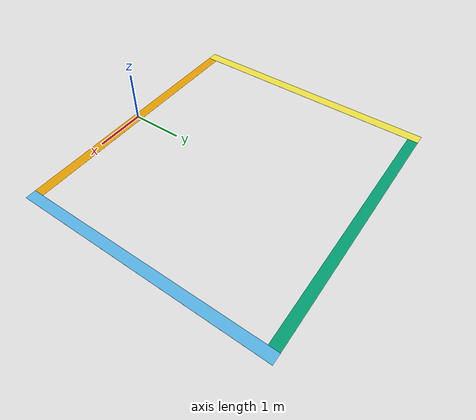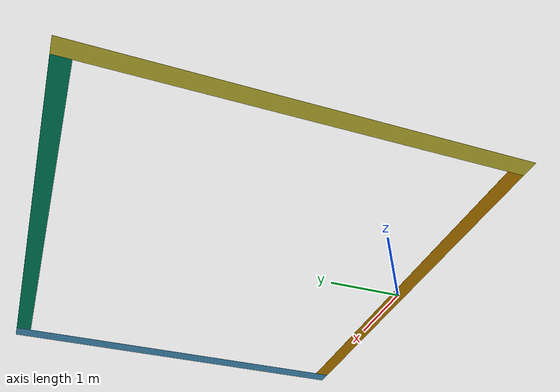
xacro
<?xml version="1.0"?>
<robot name="track">
    <link name="line1">
        <visual>
            <geometry>
                <box size="5.0 0.2 0.001"/>
            </geometry>
        </visual>

        <collision>
            <geometry>
                <box size="5.0 0.2 0.001"/>
            </geometry>
        </collision>

        <inertial>
            <mass value="0.001"/>
            <inertia ixx="0.00001" ixy="0.0" ixz="0.0" iyy="0.00001" iyz="0.0" izz="0.00001"/>
        </inertial>
    </link>

    <link name="line2">
        <visual>
            <geometry>
                <box size="5.0 0.2 0.001"/>
            </geometry>
            <origin rpy="0.0 0.0 1.5707"/>
        </visual>

        <collision>
            <geometry>
                <box size="5.0 0.2 0.001"/>
            </geometry>
            <origin rpy="0.0 0.0 1.5707"/>
        </collision>

        <inertial>
            <mass value="0.001"/>
            <inertia ixx="0.00001" ixy="0.0" ixz="0.0" iyy="0.00001" iyz="0.0" izz="0.00001"/>
        </inertial>
    </link>

    <link name="line3">
        <visual>
            <geometry>
                <box size="5.0 0.2 0.001"/>
            </geometry>
        </visual>

        <collision>
            <geometry>
                <box size="5.0 0.2 0.001"/>
            </geometry>
        </collision>

        <inertial>
            <mass value="0.001"/>
            <inertia ixx="0.00001" ixy="0.0" ixz="0.0" iyy="0.00001" iyz="0.0" izz="0.00001"/>
        </inertial>
    </link>

    <link name="line4">
        <visual>
            <geometry>
                <box size="5.0 0.2 0.001"/>
            </geometry>
            <origin rpy="0.0 0.0 1.5707"/>
        </visual>

        <collision>
            <geometry>
                <box size="5.0 0.2 0.001"/>
            </geometry>
            <origin rpy="0.0 0.0 1.5707"/>
        </collision>

        <inertial>
            <mass value="0.001"/>
            <inertia ixx="0.00001" ixy="0.0" ixz="0.0" iyy="0.00001" iyz="0.0" izz="0.00001"/>
        </inertial>
    </link>

    <joint name="joint1" type="fixed">
        <parent link="line1"/>
        <child link="line2"/>
        <origin xyz="2.6 2.4 0.0"/>
    </joint>

    <joint name="joint2" type="fixed">
        <parent link="line1"/>
        <child link="line3"/>
        <origin xyz="0.0 4.8 0.0"/>
    </joint>

    <joint name="joint3" type="fixed">
        <parent link="line1"/>
        <child link="line4"/>
        <origin xyz="-2.6 2.4 0.0"/>
    </joint>

</robot>
